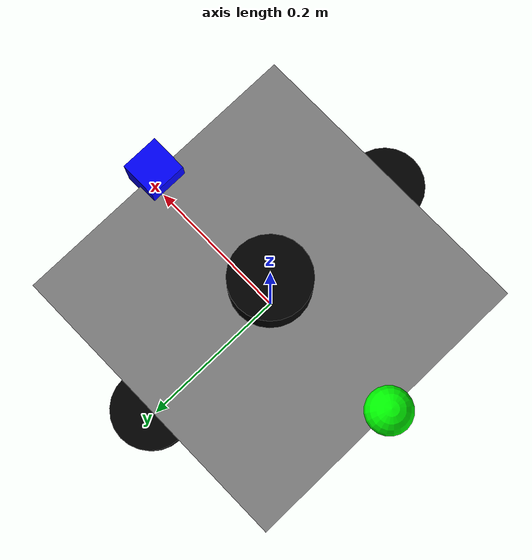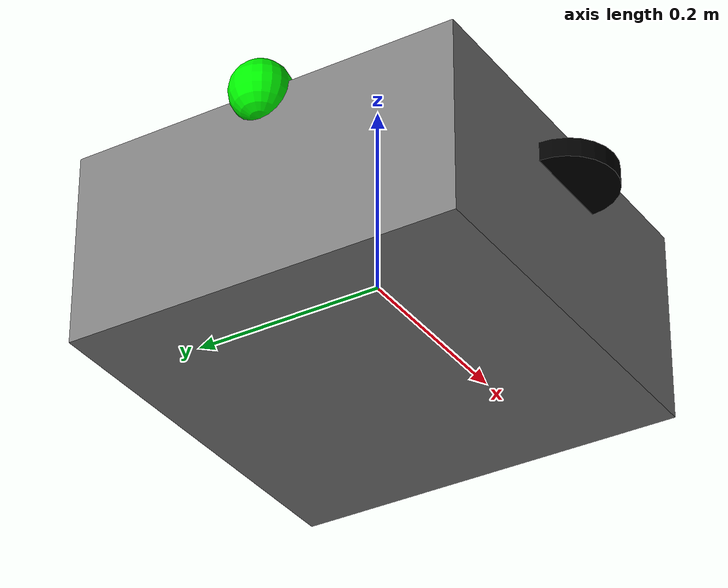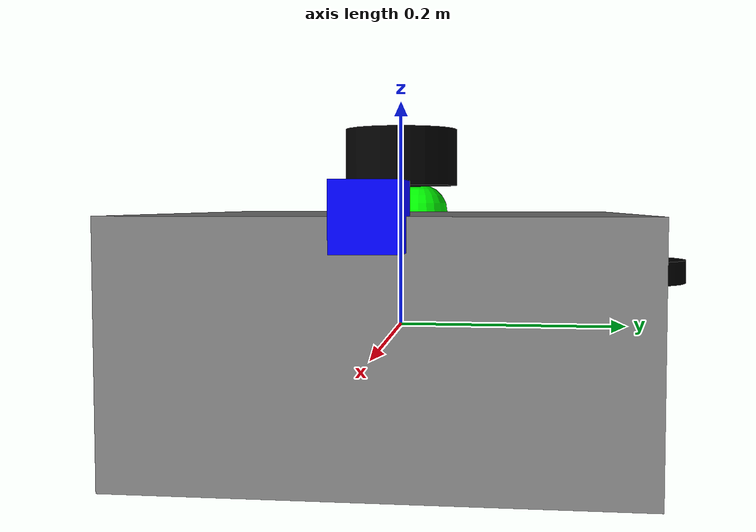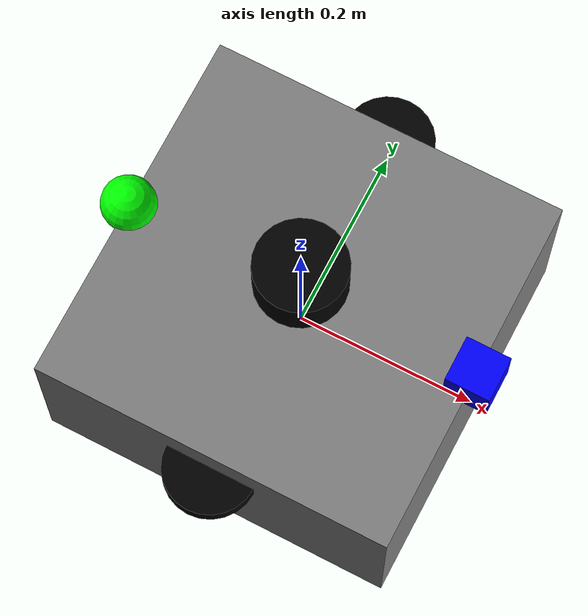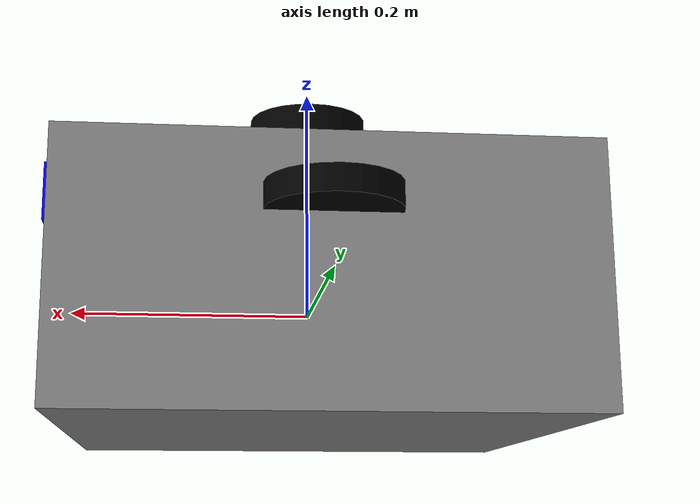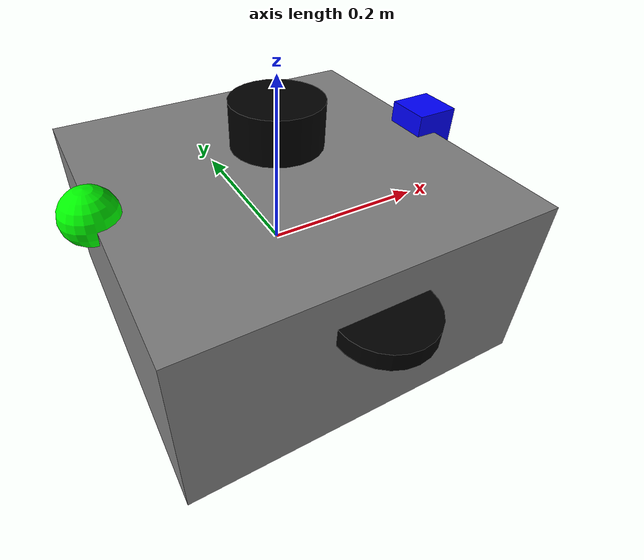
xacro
<?xml version="1.0"?>
<robot xmlns:xacro="http://ros.org/wiki/xacro" name="my_robot">

  <link name="world"/>
  <joint name="world_joint" type="fixed">
    <parent link="world"/>
    <child link="base_link"/>
  </joint>

  <!-- Base link -->
  <link name="base_link">
    <visual>
      <geometry>
        <box size="0.4 0.4 0.2"/>
      </geometry>
      <material name="gray">
        <color rgba="0.5 0.5 0.5 1"/>
      </material>
    </visual>
    <collision>
      <geometry>
        <box size="0.4 0.4 0.2"/>
      </geometry>
    </collision>
    <inertial>
      <mass value="1.0"/>
      <inertia ixx="0.01" iyy="0.01" izz="0.01" ixy="0" ixz="0" iyz="0"/>
    </inertial>
  </link>

  <!-- Left Wheel -->
  <link name="left_wheel_link">
    <visual>
      <geometry><cylinder radius="0.05" length="0.02"/></geometry>
      <material name="black"><color rgba="0 0 0 1"/></material>
    </visual>
    <collision>
      <geometry><cylinder radius="0.05" length="0.02"/></geometry>
    </collision>
    <inertial>
      <mass value="0.1"/>
      <inertia ixx="0.0001" ixy="0.0" ixz="0.0" iyy="0.0001" iyz="0.0" izz="0.0001"/>
    </inertial>
  </link>

  <!-- Right Wheel -->
  <link name="right_wheel_link">
    <visual>
      <geometry><cylinder radius="0.05" length="0.02"/></geometry>
      <material name="black"><color rgba="0 0 0 1"/></material>
    </visual>
    <collision>
      <geometry><cylinder radius="0.05" length="0.02"/></geometry>
    </collision>
    <inertial>
      <mass value="0.1"/>
      <inertia ixx="0.0001" ixy="0.0" ixz="0.0" iyy="0.0001" iyz="0.0" izz="0.0001"/>
    </inertial>
  </link>

  <!-- Wheel Joints -->
  <joint name="left_wheel_joint" type="continuous">
    <parent link="base_link"/>
    <child link="left_wheel_link"/>
    <origin xyz="0 -0.2 0.05" rpy="0 0 0"/>
    <axis xyz="0 1 0"/>
  </joint>

  <joint name="right_wheel_joint" type="continuous">
    <parent link="base_link"/>
    <child link="right_wheel_link"/>
    <origin xyz="0 0.2 0.05" rpy="0 0 0"/>
    <axis xyz="0 1 0"/>
  </joint>

  <transmission name="left_wheel_trans">
    <type>transmission_interface/SimpleTransmission</type>
    <joint name="left_wheel_joint">
      <hardwareInterface>hardware_interface/VelocityJointInterface</hardwareInterface>
    </joint>
    <actuator name="left_wheel_motor">
      <hardwareInterface>hardware_interface/VelocityJointInterface</hardwareInterface>
    </actuator>
  </transmission>

  <transmission name="right_wheel_trans">
    <type>transmission_interface/SimpleTransmission</type>
    <joint name="right_wheel_joint">
      <hardwareInterface>hardware_interface/VelocityJointInterface</hardwareInterface>
    </joint>
    <actuator name="right_wheel_motor">
      <hardwareInterface>hardware_interface/VelocityJointInterface</hardwareInterface>
    </actuator>
  </transmission>

  <!-- LiDAR Link -->
  <link name="lidar_link">
    <visual>
      <geometry><cylinder length="0.05" radius="0.05"/></geometry>
      <material name="black"><color rgba="0 0 0 1"/></material>
    </visual>
    <collision>
      <geometry><cylinder length="0.05" radius="0.05"/></geometry>
    </collision>
    <inertial>
      <mass value="0.1"/>
      <inertia ixx="0.0001" ixy="0.0" ixz="0.0" iyy="0.0001" iyz="0.0" izz="0.0001"/>
    </inertial>
  </link>

  <!-- Camera Link -->
  <link name="camera_link">
    <visual>
      <geometry><box size="0.05 0.05 0.05"/></geometry>
      <material name="blue"><color rgba="0 0 1 1"/></material>
    </visual>
    <collision>
      <geometry><box size="0.05 0.05 0.05"/></geometry>
    </collision>
    <inertial>
      <mass value="0.05"/>
      <inertia ixx="0.00005" ixy="0.0" ixz="0.0" iyy="0.00005" iyz="0.0" izz="0.00005"/>
    </inertial>
  </link>

  <!-- IMU Link -->
  <link name="imu_link">
    <visual>
      <geometry><sphere radius="0.03"/></geometry>
      <material name="green"><color rgba="0 1 0 1"/></material>
    </visual>
    <collision>
      <geometry><sphere radius="0.03"/></geometry>
    </collision>
    <inertial>
      <mass value="0.03"/>
      <inertia ixx="0.00003" ixy="0.0" ixz="0.0" iyy="0.00003" iyz="0.0" izz="0.00003"/>
    </inertial>
  </link>

  <!-- Sensor Joints -->
  <joint name="imu_joint" type="fixed">
    <parent link="base_link"/>
    <child link="imu_link"/>
    <origin xyz="-0.2 0 0.1" rpy="0 0 0"/>
  </joint>

  <joint name="camera_joint" type="fixed">
    <parent link="base_link"/>
    <child link="camera_link"/>
    <origin xyz="0.2 0 0.1" rpy="0 0 0"/>
  </joint>

  <joint name="lidar_joint" type="fixed">
    <parent link="base_link"/>
    <child link="lidar_link"/>
    <origin xyz="0 0 0.15" rpy="0 0 0"/>
  </joint>

  <!-- Gazebo Sensor Plugins -->
  <gazebo reference="lidar_link">
    <sensor type="ray" name="lidar_sensor">
      <pose>0 0 0 0 0 0</pose>
      <visualize>true</visualize>
      <update_rate>10</update_rate>
      <ray>
        <scan>
          <horizontal>
            <samples>360</samples>
            <resolution>1</resolution>
            <min_angle>-1.57</min_angle>
            <max_angle>1.57</max_angle>
          </horizontal>
        </scan>
        <range>
          <min>0.1</min>
          <max>10.0</max>
        </range>
      </ray>
      <plugin name="gazebo_lidar" filename="libgazebo_ros_ray_sensor.so">
        <ros>
          <namespace>/</namespace>
          <remapping>gazebo_lidar/out:=scan</remapping>
        </ros>
        <frameName>lidar_link</frameName>
        <topicName>gazebo_lidar/out</topicName>
      </plugin>
    </sensor>
  </gazebo>

  <gazebo reference="camera_link">
    <sensor type="camera" name="camera_sensor">
      <pose>0 0 0 0 0 0</pose>
      <update_rate>30</update_rate>
      <camera>
        <horizontal_fov>1.3962634</horizontal_fov>
        <image>
          <width>640</width>
          <height>480</height>
          <format>R8G8B8</format>
        </image>
        <clip>
          <near>0.1</near>
          <far>100</far>
        </clip>
      </camera>
      <plugin name="gazebo_camera" filename="libgazebo_ros_camera.so">
        <ros>
          <namespace>/</namespace>
          <remapping>camera/image_raw:=/camera/image_raw</remapping>
        </ros>
        <cameraName>camera</cameraName>
        <frameName>camera_link</frameName>
      </plugin>
    </sensor>
  </gazebo>

  <gazebo reference="imu_link">
    <sensor type="imu" name="imu_sensor">
      <always_on>true</always_on>
      <update_rate>50</update_rate>
      <pose>0 0 0 0 0 0</pose>
      <plugin name="gazebo_imu" filename="libgazebo_ros_imu_sensor.so">
        <ros>
          <namespace>/</namespace>
          <remapping>gazebo_imu/out:=/imu/data</remapping>
        </ros>
        <frameName>imu_link</frameName>
      </plugin>
    </sensor>
  </gazebo>

  <!-- Corrected Differential Drive Plugin -->
  <gazebo>
    <plugin name="diff_drive_controller" filename="libgazebo_ros_diff_drive.so">
      <ros>
        <namespace>/</namespace>
      </ros>
      <update_rate>50.0</update_rate>
      <left_joint>left_wheel_joint</left_joint>
      <right_joint>right_wheel_joint</right_joint>
      <wheel_separation>0.4</wheel_separation>
      <wheel_diameter>0.1</wheel_diameter>
      <cmd_vel_topic>cmd_vel</cmd_vel_topic>
      <odom_topic>odom</odom_topic>
      <robot_base_frame>base_link</robot_base_frame>
      <publish_tf>true</publish_tf>
      <publish_odom>true</publish_odom>
    </plugin>
  </gazebo>

</robot>
